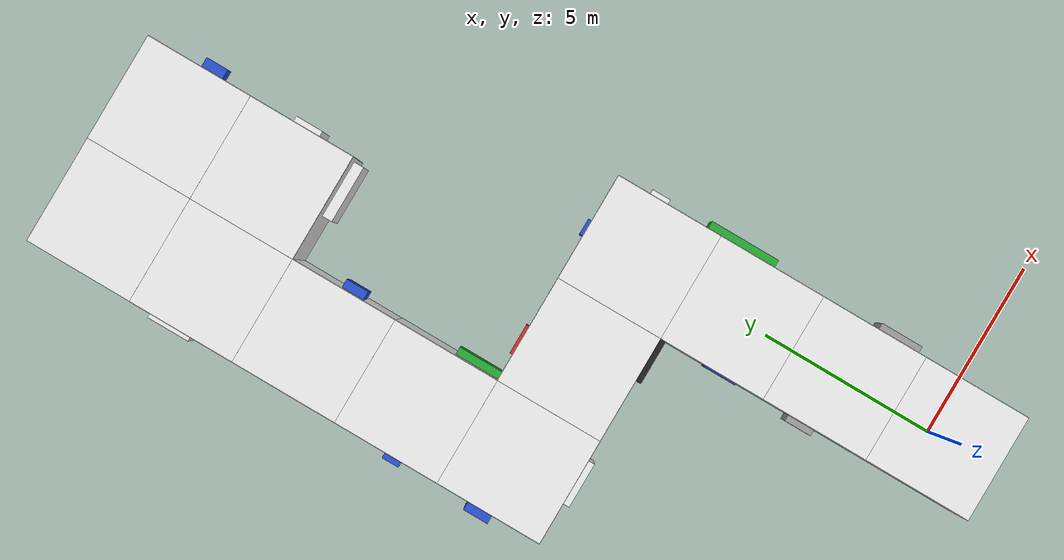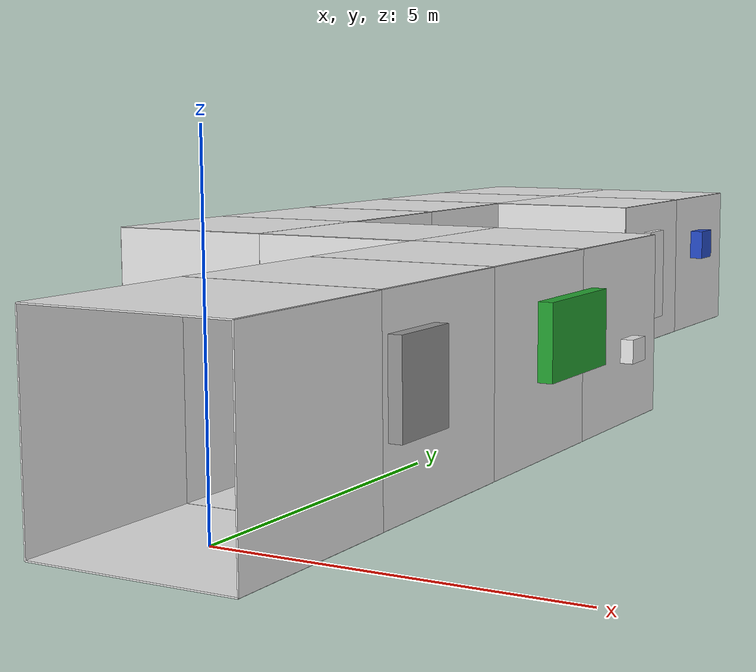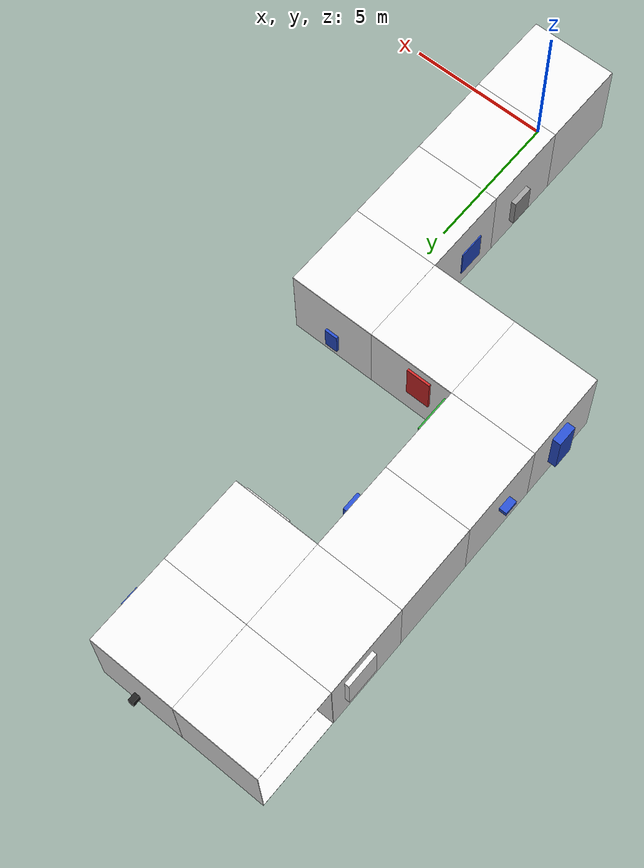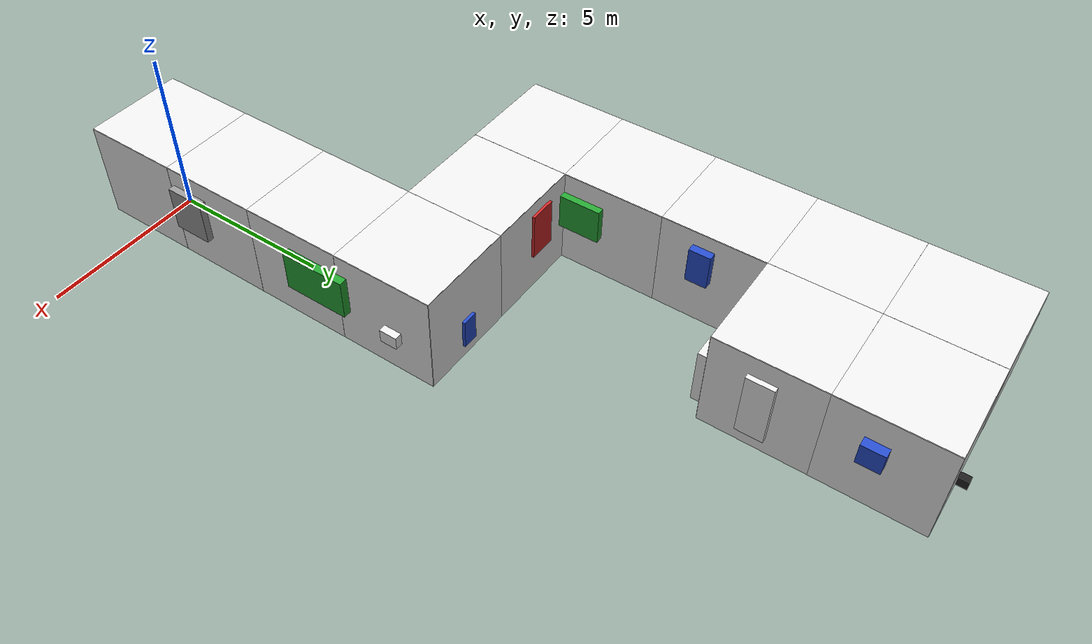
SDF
<?xml version='1.0' encoding='us-ascii'?>
<sdf version="1.6">
  <model name="corridor_white">
       <model name="wall_right_0_0_0_0">
      <static>1</static>
      <pose>1.5 0.0 1.5 0.0 0.0 1.57</pose>
      <link name="link">
        <collision name="collision">
          <geometry>
            <box>
              <size>3 0.02 3</size>
            </box>
          </geometry>
        </collision>
        <visual name="visual">
          <material>
            <script>
              <name>Gazebo/White</name>
              <uri>file://media/materials/scripts/gazebo.material</uri>
            </script>
          </material>
          <geometry>
            <box>
              <size>3 0.02 3</size>
            </box>
          </geometry>
        </visual>
      </link>
    </model>
    <model name="wall_left_0_0_0_0">
      <static>1</static>
      <pose>-1.5 0.0 1.5 0.0 0.0 1.57</pose>
      <link name="link">
        <collision name="collision">
          <geometry>
            <box>
              <size>3 0.02 3</size>
            </box>
          </geometry>
        </collision>
        <visual name="visual">
          <material>
            <script>
              <name>Gazebo/White</name>
              <uri>file://media/materials/scripts/gazebo.material</uri>
            </script>
          </material>
          <geometry>
            <box>
              <size>3 0.02 3</size>
            </box>
          </geometry>
        </visual>
      </link>
    </model>
    <model name="wall_top_0_0_0_0">
      <static>1</static>
      <pose>0.0 0.0 3.0 1.57 0.0 0.0</pose>
      <link name="link">
        <collision name="collision">
          <geometry>
            <box>
              <size>3 0.02 3</size>
            </box>
          </geometry>
        </collision>
        <visual name="visual">
          <material>
            <script>
              <name>Gazebo/White</name>
              <uri>file://media/materials/scripts/gazebo.material</uri>
            </script>
          </material>
          <geometry>
            <box>
              <size>3 0.02 3</size>
            </box>
          </geometry>
        </visual>
      </link>
    </model>
    <model name="wall_bottom_0_0_0_0">
      <static>1</static>
      <pose>0.0 0.0 0.0 1.57 0.0 0.0</pose>
      <link name="link">
        <collision name="collision">
          <geometry>
            <box>
              <size>3 0.02 3</size>
            </box>
          </geometry>
        </collision>
        <visual name="visual">
          <material>
            <script>
              <name>Gazebo/White</name>
              <uri>file://media/materials/scripts/gazebo.material</uri>
            </script>
          </material>
          <geometry>
            <box>
              <size>3 0.02 3</size>
            </box>
          </geometry>
        </visual>
      </link>
    </model>
    <model name="wall_right_0_1_0_1">
      <static>1</static>
      <pose>1.5 3.0 1.5 0.0 0.0 1.57</pose>
      <link name="link">
        <collision name="collision">
          <geometry>
            <box>
              <size>3 0.02 3</size>
            </box>
          </geometry>
        </collision>
        <visual name="visual">
          <material>
            <script>
              <name>Gazebo/White</name>
              <uri>file://media/materials/scripts/gazebo.material</uri>
            </script>
          </material>
          <geometry>
            <box>
              <size>3 0.02 3</size>
            </box>
          </geometry>
        </visual>
      </link>
    </model>
    <model name="wall_left_0_1_0_1">
      <static>1</static>
      <pose>-1.5 3.0 1.5 0.0 0.0 1.57</pose>
      <link name="link">
        <collision name="collision">
          <geometry>
            <box>
              <size>3 0.02 3</size>
            </box>
          </geometry>
        </collision>
        <visual name="visual">
          <material>
            <script>
              <name>Gazebo/White</name>
              <uri>file://media/materials/scripts/gazebo.material</uri>
            </script>
          </material>
          <geometry>
            <box>
              <size>3 0.02 3</size>
            </box>
          </geometry>
        </visual>
      </link>
    </model>
    <model name="wall_top_0_1_0_1">
      <static>1</static>
      <pose>0.0 3.0 3.0 1.57 0.0 0.0</pose>
      <link name="link">
        <collision name="collision">
          <geometry>
            <box>
              <size>3 0.02 3</size>
            </box>
          </geometry>
        </collision>
        <visual name="visual">
          <material>
            <script>
              <name>Gazebo/White</name>
              <uri>file://media/materials/scripts/gazebo.material</uri>
            </script>
          </material>
          <geometry>
            <box>
              <size>3 0.02 3</size>
            </box>
          </geometry>
        </visual>
      </link>
    </model>
    <model name="wall_bottom_0_1_0_1">
      <static>1</static>
      <pose>0.0 3.0 0.0 1.57 0.0 0.0</pose>
      <link name="link">
        <collision name="collision">
          <geometry>
            <box>
              <size>3 0.02 3</size>
            </box>
          </geometry>
        </collision>
        <visual name="visual">
          <material>
            <script>
              <name>Gazebo/White</name>
              <uri>file://media/materials/scripts/gazebo.material</uri>
            </script>
          </material>
          <geometry>
            <box>
              <size>3 0.02 3</size>
            </box>
          </geometry>
        </visual>
      </link>
    </model>
    <model name="panel_0_1_0_1">
      <static>1</static>
      <pose>1.5 2.2241455779976746 1.76880062534 0.0 0.0 0.0</pose>
      <link name="link">
        <collision name="collision">
          <geometry>
            <box>
              <size>0.423083053717 1.17973638202 1.35894419831</size>
            </box>
          </geometry>
        </collision>
        <visual name="visual">
          <material>
            <script>
              <name>Gazebo/Grey</name>
              <uri>file://media/materials/scripts/gazebo.material</uri>
            </script>
          </material>
          <geometry>
            <box>
              <size>0.423083053717 1.17973638202 1.35894419831</size>
            </box>
          </geometry>
        </visual>
      </link>
    </model>
    <model name="panel_0_1_1_1">
      <static>1</static>
      <pose>-1.5 3.2159290072298226 1.14978853377 0.0 0.0 0.0</pose>
      <link name="link">
        <collision name="collision">
          <geometry>
            <box>
              <size>0.368283796153 0.767584961987 1.09945229276</size>
            </box>
          </geometry>
        </collision>
        <visual name="visual">
          <material>
            <script>
              <name>Gazebo/Grey</name>
              <uri>file://media/materials/scripts/gazebo.material</uri>
            </script>
          </material>
          <geometry>
            <box>
              <size>0.368283796153 0.767584961987 1.09945229276</size>
            </box>
          </geometry>
        </visual>
      </link>
    </model>
    <model name="wall_right_0_2_0_1">
      <static>1</static>
      <pose>1.5 6.0 1.5 0.0 0.0 1.57</pose>
      <link name="link">
        <collision name="collision">
          <geometry>
            <box>
              <size>3 0.02 3</size>
            </box>
          </geometry>
        </collision>
        <visual name="visual">
          <material>
            <script>
              <name>Gazebo/White</name>
              <uri>file://media/materials/scripts/gazebo.material</uri>
            </script>
          </material>
          <geometry>
            <box>
              <size>3 0.02 3</size>
            </box>
          </geometry>
        </visual>
      </link>
    </model>
    <model name="wall_left_0_2_0_1">
      <static>1</static>
      <pose>-1.5 6.0 1.5 0.0 0.0 1.57</pose>
      <link name="link">
        <collision name="collision">
          <geometry>
            <box>
              <size>3 0.02 3</size>
            </box>
          </geometry>
        </collision>
        <visual name="visual">
          <material>
            <script>
              <name>Gazebo/White</name>
              <uri>file://media/materials/scripts/gazebo.material</uri>
            </script>
          </material>
          <geometry>
            <box>
              <size>3 0.02 3</size>
            </box>
          </geometry>
        </visual>
      </link>
    </model>
    <model name="wall_top_0_2_0_1">
      <static>1</static>
      <pose>0.0 6.0 3.0 1.57 0.0 0.0</pose>
      <link name="link">
        <collision name="collision">
          <geometry>
            <box>
              <size>3 0.02 3</size>
            </box>
          </geometry>
        </collision>
        <visual name="visual">
          <material>
            <script>
              <name>Gazebo/White</name>
              <uri>file://media/materials/scripts/gazebo.material</uri>
            </script>
          </material>
          <geometry>
            <box>
              <size>3 0.02 3</size>
            </box>
          </geometry>
        </visual>
      </link>
    </model>
    <model name="wall_bottom_0_2_0_1">
      <static>1</static>
      <pose>0.0 6.0 0.0 1.57 0.0 0.0</pose>
      <link name="link">
        <collision name="collision">
          <geometry>
            <box>
              <size>3 0.02 3</size>
            </box>
          </geometry>
        </collision>
        <visual name="visual">
          <material>
            <script>
              <name>Gazebo/White</name>
              <uri>file://media/materials/scripts/gazebo.material</uri>
            </script>
          </material>
          <geometry>
            <box>
              <size>3 0.02 3</size>
            </box>
          </geometry>
        </visual>
      </link>
    </model>
    <model name="panel_0_2_0_1">
      <static>1</static>
      <pose>1.5 6.87152692760868 1.7749708912 0.0 0.0 0.0</pose>
      <link name="link">
        <collision name="collision">
          <geometry>
            <box>
              <size>0.497894865199 1.96393577452 1.19345969073</size>
            </box>
          </geometry>
        </collision>
        <visual name="visual">
          <material>
            <script>
              <name>Gazebo/Green</name>
              <uri>file://media/materials/scripts/gazebo.material</uri>
            </script>
          </material>
          <geometry>
            <box>
              <size>0.497894865199 1.96393577452 1.19345969073</size>
            </box>
          </geometry>
        </visual>
      </link>
    </model>
    <model name="panel_0_2_1_1">
      <static>1</static>
      <pose>-1.5 5.635860961192801 1.17555072138 0.0 0.0 0.0</pose>
      <link name="link">
        <collision name="collision">
          <geometry>
            <box>
              <size>0.0907272428348 0.924566676894 1.11926749878</size>
            </box>
          </geometry>
        </collision>
        <visual name="visual">
          <material>
            <script>
              <name>Gazebo/Blue</name>
              <uri>file://media/materials/scripts/gazebo.material</uri>
            </script>
          </material>
          <geometry>
            <box>
              <size>0.0907272428348 0.924566676894 1.11926749878</size>
            </box>
          </geometry>
        </visual>
      </link>
    </model>
    <model name="wall_front_0_3_0_3">
      <static>1</static>
      <pose>0.0 10.5 1.5 0.0 0.0 0.0</pose>
      <link name="link">
        <collision name="collision">
          <geometry>
            <box>
              <size>3 0.02 3</size>
            </box>
          </geometry>
        </collision>
        <visual name="visual">
          <material>
            <script>
              <name>Gazebo/White</name>
              <uri>file://media/materials/scripts/gazebo.material</uri>
            </script>
          </material>
          <geometry>
            <box>
              <size>3 0.02 3</size>
            </box>
          </geometry>
        </visual>
      </link>
    </model>
    <model name="wall_right_0_3_0_3">
      <static>1</static>
      <pose>1.5 9.0 1.5 0.0 0.0 1.57</pose>
      <link name="link">
        <collision name="collision">
          <geometry>
            <box>
              <size>3 0.02 3</size>
            </box>
          </geometry>
        </collision>
        <visual name="visual">
          <material>
            <script>
              <name>Gazebo/White</name>
              <uri>file://media/materials/scripts/gazebo.material</uri>
            </script>
          </material>
          <geometry>
            <box>
              <size>3 0.02 3</size>
            </box>
          </geometry>
        </visual>
      </link>
    </model>
    <model name="wall_top_0_3_0_3">
      <static>1</static>
      <pose>0.0 9.0 3.0 1.57 0.0 0.0</pose>
      <link name="link">
        <collision name="collision">
          <geometry>
            <box>
              <size>3 0.02 3</size>
            </box>
          </geometry>
        </collision>
        <visual name="visual">
          <material>
            <script>
              <name>Gazebo/White</name>
              <uri>file://media/materials/scripts/gazebo.material</uri>
            </script>
          </material>
          <geometry>
            <box>
              <size>3 0.02 3</size>
            </box>
          </geometry>
        </visual>
      </link>
    </model>
    <model name="wall_bottom_0_3_0_3">
      <static>1</static>
      <pose>0.0 9.0 0.0 1.57 0.0 0.0</pose>
      <link name="link">
        <collision name="collision">
          <geometry>
            <box>
              <size>3 0.02 3</size>
            </box>
          </geometry>
        </collision>
        <visual name="visual">
          <material>
            <script>
              <name>Gazebo/White</name>
              <uri>file://media/materials/scripts/gazebo.material</uri>
            </script>
          </material>
          <geometry>
            <box>
              <size>3 0.02 3</size>
            </box>
          </geometry>
        </visual>
      </link>
    </model>
    <model name="panel_0_3_0_3">
      <static>1</static>
      <pose>1.5 9.286936696781568 1.2100380568 0.0 0.0 0.0</pose>
      <link name="link">
        <collision name="collision">
          <geometry>
            <box>
              <size>0.456125890025 0.525917677065 0.392894214881</size>
            </box>
          </geometry>
        </collision>
        <visual name="visual">
          <material>
            <script>
              <name>Gazebo/White</name>
              <uri>file://media/materials/scripts/gazebo.material</uri>
            </script>
          </material>
          <geometry>
            <box>
              <size>0.456125890025 0.525917677065 0.392894214881</size>
            </box>
          </geometry>
        </visual>
      </link>
    </model>
    <model name="panel_0_3_1_3">
      <static>1</static>
      <pose>0.004071926796724024 10.5 0.861667997028 0.0 0.0 1.57</pose>
      <link name="link">
        <collision name="collision">
          <geometry>
            <box>
              <size>0.204371754929 0.459037315279 0.886738190696</size>
            </box>
          </geometry>
        </collision>
        <visual name="visual">
          <material>
            <script>
              <name>Gazebo/Blue</name>
              <uri>file://media/materials/scripts/gazebo.material</uri>
            </script>
          </material>
          <geometry>
            <box>
              <size>0.204371754929 0.459037315279 0.886738190696</size>
            </box>
          </geometry>
        </visual>
      </link>
    </model>
    <model name="wall_right_-1_3_0_1">
      <static>1</static>
      <pose>-3.0 10.5 1.5 0.0 0.0 3.14</pose>
      <link name="link">
        <collision name="collision">
          <geometry>
            <box>
              <size>3 0.02 3</size>
            </box>
          </geometry>
        </collision>
        <visual name="visual">
          <material>
            <script>
              <name>Gazebo/White</name>
              <uri>file://media/materials/scripts/gazebo.material</uri>
            </script>
          </material>
          <geometry>
            <box>
              <size>3 0.02 3</size>
            </box>
          </geometry>
        </visual>
      </link>
    </model>
    <model name="wall_left_-1_3_0_1">
      <static>1</static>
      <pose>-3.0 7.5 1.5 0.0 0.0 3.14</pose>
      <link name="link">
        <collision name="collision">
          <geometry>
            <box>
              <size>3 0.02 3</size>
            </box>
          </geometry>
        </collision>
        <visual name="visual">
          <material>
            <script>
              <name>Gazebo/White</name>
              <uri>file://media/materials/scripts/gazebo.material</uri>
            </script>
          </material>
          <geometry>
            <box>
              <size>3 0.02 3</size>
            </box>
          </geometry>
        </visual>
      </link>
    </model>
    <model name="wall_top_-1_3_0_1">
      <static>1</static>
      <pose>-3.0 9.0 3.0 1.57 0.0 1.57</pose>
      <link name="link">
        <collision name="collision">
          <geometry>
            <box>
              <size>3 0.02 3</size>
            </box>
          </geometry>
        </collision>
        <visual name="visual">
          <material>
            <script>
              <name>Gazebo/White</name>
              <uri>file://media/materials/scripts/gazebo.material</uri>
            </script>
          </material>
          <geometry>
            <box>
              <size>3 0.02 3</size>
            </box>
          </geometry>
        </visual>
      </link>
    </model>
    <model name="wall_bottom_-1_3_0_1">
      <static>1</static>
      <pose>-3.0 9.0 0.0 1.57 0.0 1.57</pose>
      <link name="link">
        <collision name="collision">
          <geometry>
            <box>
              <size>3 0.02 3</size>
            </box>
          </geometry>
        </collision>
        <visual name="visual">
          <material>
            <script>
              <name>Gazebo/White</name>
              <uri>file://media/materials/scripts/gazebo.material</uri>
            </script>
          </material>
          <geometry>
            <box>
              <size>3 0.02 3</size>
            </box>
          </geometry>
        </visual>
      </link>
    </model>
    <model name="panel_-1_3_0_1">
      <static>1</static>
      <pose>-3.3420306696428597 10.5 1.88658982361 0.0 0.0 1.57</pose>
      <link name="link">
        <collision name="collision">
          <geometry>
            <box>
              <size>0.178328974733 0.828825840254 1.44131656192</size>
            </box>
          </geometry>
        </collision>
        <visual name="visual">
          <material>
            <script>
              <name>Gazebo/Red</name>
              <uri>file://media/materials/scripts/gazebo.material</uri>
            </script>
          </material>
          <geometry>
            <box>
              <size>0.178328974733 0.828825840254 1.44131656192</size>
            </box>
          </geometry>
        </visual>
      </link>
    </model>
    <model name="panel_-1_3_1_1">
      <static>1</static>
      <pose>-1.8046588702643742 7.5 1.92212192568 0.0 0.0 1.57</pose>
      <link name="link">
        <collision name="collision">
          <geometry>
            <box>
              <size>0.357357351946 1.873804943 1.27352757631</size>
            </box>
          </geometry>
        </collision>
        <visual name="visual">
          <material>
            <script>
              <name>Gazebo/Black</name>
              <uri>file://media/materials/scripts/gazebo.material</uri>
            </script>
          </material>
          <geometry>
            <box>
              <size>0.357357351946 1.873804943 1.27352757631</size>
            </box>
          </geometry>
        </visual>
      </link>
    </model>
    <model name="wall_front_-2_3_0_2">
      <static>1</static>
      <pose>-7.5 9.0 1.5 0.0 0.0 1.57</pose>
      <link name="link">
        <collision name="collision">
          <geometry>
            <box>
              <size>3 0.02 3</size>
            </box>
          </geometry>
        </collision>
        <visual name="visual">
          <material>
            <script>
              <name>Gazebo/White</name>
              <uri>file://media/materials/scripts/gazebo.material</uri>
            </script>
          </material>
          <geometry>
            <box>
              <size>3 0.02 3</size>
            </box>
          </geometry>
        </visual>
      </link>
    </model>
    <model name="wall_left_-2_3_0_2">
      <static>1</static>
      <pose>-6.0 7.5 1.5 0.0 0.0 3.14</pose>
      <link name="link">
        <collision name="collision">
          <geometry>
            <box>
              <size>3 0.02 3</size>
            </box>
          </geometry>
        </collision>
        <visual name="visual">
          <material>
            <script>
              <name>Gazebo/White</name>
              <uri>file://media/materials/scripts/gazebo.material</uri>
            </script>
          </material>
          <geometry>
            <box>
              <size>3 0.02 3</size>
            </box>
          </geometry>
        </visual>
      </link>
    </model>
    <model name="wall_top_-2_3_0_2">
      <static>1</static>
      <pose>-6.0 9.0 3.0 1.57 0.0 1.57</pose>
      <link name="link">
        <collision name="collision">
          <geometry>
            <box>
              <size>3 0.02 3</size>
            </box>
          </geometry>
        </collision>
        <visual name="visual">
          <material>
            <script>
              <name>Gazebo/White</name>
              <uri>file://media/materials/scripts/gazebo.material</uri>
            </script>
          </material>
          <geometry>
            <box>
              <size>3 0.02 3</size>
            </box>
          </geometry>
        </visual>
      </link>
    </model>
    <model name="wall_bottom_-2_3_0_2">
      <static>1</static>
      <pose>-6.0 9.0 0.0 1.57 0.0 1.57</pose>
      <link name="link">
        <collision name="collision">
          <geometry>
            <box>
              <size>3 0.02 3</size>
            </box>
          </geometry>
        </collision>
        <visual name="visual">
          <material>
            <script>
              <name>Gazebo/White</name>
              <uri>file://media/materials/scripts/gazebo.material</uri>
            </script>
          </material>
          <geometry>
            <box>
              <size>3 0.02 3</size>
            </box>
          </geometry>
        </visual>
      </link>
    </model>
    <model name="panel_-2_3_0_2">
      <static>1</static>
      <pose>-7.5 9.219944884344075 1.59290185562 0.0 0.0 3.14</pose>
      <link name="link">
        <collision name="collision">
          <geometry>
            <box>
              <size>0.592466907683 0.712480567115 1.60356392178</size>
            </box>
          </geometry>
        </collision>
        <visual name="visual">
          <material>
            <script>
              <name>Gazebo/Blue</name>
              <uri>file://media/materials/scripts/gazebo.material</uri>
            </script>
          </material>
          <geometry>
            <box>
              <size>0.592466907683 0.712480567115 1.60356392178</size>
            </box>
          </geometry>
        </visual>
      </link>
    </model>
    <model name="panel_-2_3_1_2">
      <static>1</static>
      <pose>-5.773238193758122 7.5 1.18134228043 0.0 0.0 1.57</pose>
      <link name="link">
        <collision name="collision">
          <geometry>
            <box>
              <size>0.480666316103 1.28267439254 1.40654631702</size>
            </box>
          </geometry>
        </collision>
        <visual name="visual">
          <material>
            <script>
              <name>Gazebo/White</name>
              <uri>file://media/materials/scripts/gazebo.material</uri>
            </script>
          </material>
          <geometry>
            <box>
              <size>0.480666316103 1.28267439254 1.40654631702</size>
            </box>
          </geometry>
        </visual>
      </link>
    </model>
    <model name="wall_right_-2_4_0_1">
      <static>1</static>
      <pose>-4.5 12.0 1.5 0.0 0.0 1.57</pose>
      <link name="link">
        <collision name="collision">
          <geometry>
            <box>
              <size>3 0.02 3</size>
            </box>
          </geometry>
        </collision>
        <visual name="visual">
          <material>
            <script>
              <name>Gazebo/White</name>
              <uri>file://media/materials/scripts/gazebo.material</uri>
            </script>
          </material>
          <geometry>
            <box>
              <size>3 0.02 3</size>
            </box>
          </geometry>
        </visual>
      </link>
    </model>
    <model name="wall_left_-2_4_0_1">
      <static>1</static>
      <pose>-7.5 12.0 1.5 0.0 0.0 1.57</pose>
      <link name="link">
        <collision name="collision">
          <geometry>
            <box>
              <size>3 0.02 3</size>
            </box>
          </geometry>
        </collision>
        <visual name="visual">
          <material>
            <script>
              <name>Gazebo/White</name>
              <uri>file://media/materials/scripts/gazebo.material</uri>
            </script>
          </material>
          <geometry>
            <box>
              <size>3 0.02 3</size>
            </box>
          </geometry>
        </visual>
      </link>
    </model>
    <model name="wall_top_-2_4_0_1">
      <static>1</static>
      <pose>-6.0 12.0 3.0 1.57 0.0 0.0</pose>
      <link name="link">
        <collision name="collision">
          <geometry>
            <box>
              <size>3 0.02 3</size>
            </box>
          </geometry>
        </collision>
        <visual name="visual">
          <material>
            <script>
              <name>Gazebo/White</name>
              <uri>file://media/materials/scripts/gazebo.material</uri>
            </script>
          </material>
          <geometry>
            <box>
              <size>3 0.02 3</size>
            </box>
          </geometry>
        </visual>
      </link>
    </model>
    <model name="wall_bottom_-2_4_0_1">
      <static>1</static>
      <pose>-6.0 12.0 0.0 1.57 0.0 0.0</pose>
      <link name="link">
        <collision name="collision">
          <geometry>
            <box>
              <size>3 0.02 3</size>
            </box>
          </geometry>
        </collision>
        <visual name="visual">
          <material>
            <script>
              <name>Gazebo/White</name>
              <uri>file://media/materials/scripts/gazebo.material</uri>
            </script>
          </material>
          <geometry>
            <box>
              <size>3 0.02 3</size>
            </box>
          </geometry>
        </visual>
      </link>
    </model>
    <model name="panel_-2_4_0_1">
      <static>1</static>
      <pose>-4.5 10.954909121704679 1.85162423829 0.0 0.0 0.0</pose>
      <link name="link">
        <collision name="collision">
          <geometry>
            <box>
              <size>0.446083324655 1.60101667372 1.06303925732</size>
            </box>
          </geometry>
        </collision>
        <visual name="visual">
          <material>
            <script>
              <name>Gazebo/Green</name>
              <uri>file://media/materials/scripts/gazebo.material</uri>
            </script>
          </material>
          <geometry>
            <box>
              <size>0.446083324655 1.60101667372 1.06303925732</size>
            </box>
          </geometry>
        </visual>
      </link>
    </model>
    <model name="panel_-2_4_1_1">
      <static>1</static>
      <pose>-7.5 11.799646327172775 1.74514268028 0.0 0.0 0.0</pose>
      <link name="link">
        <collision name="collision">
          <geometry>
            <box>
              <size>0.541125785587 0.490364281368 0.16844632354</size>
            </box>
          </geometry>
        </collision>
        <visual name="visual">
          <material>
            <script>
              <name>Gazebo/Blue</name>
              <uri>file://media/materials/scripts/gazebo.material</uri>
            </script>
          </material>
          <geometry>
            <box>
              <size>0.541125785587 0.490364281368 0.16844632354</size>
            </box>
          </geometry>
        </visual>
      </link>
    </model>
    <model name="wall_right_-2_5_0_1">
      <static>1</static>
      <pose>-4.5 15.0 1.5 0.0 0.0 1.57</pose>
      <link name="link">
        <collision name="collision">
          <geometry>
            <box>
              <size>3 0.02 3</size>
            </box>
          </geometry>
        </collision>
        <visual name="visual">
          <material>
            <script>
              <name>Gazebo/White</name>
              <uri>file://media/materials/scripts/gazebo.material</uri>
            </script>
          </material>
          <geometry>
            <box>
              <size>3 0.02 3</size>
            </box>
          </geometry>
        </visual>
      </link>
    </model>
    <model name="wall_left_-2_5_0_1">
      <static>1</static>
      <pose>-7.5 15.0 1.5 0.0 0.0 1.57</pose>
      <link name="link">
        <collision name="collision">
          <geometry>
            <box>
              <size>3 0.02 3</size>
            </box>
          </geometry>
        </collision>
        <visual name="visual">
          <material>
            <script>
              <name>Gazebo/White</name>
              <uri>file://media/materials/scripts/gazebo.material</uri>
            </script>
          </material>
          <geometry>
            <box>
              <size>3 0.02 3</size>
            </box>
          </geometry>
        </visual>
      </link>
    </model>
    <model name="wall_top_-2_5_0_1">
      <static>1</static>
      <pose>-6.0 15.0 3.0 1.57 0.0 0.0</pose>
      <link name="link">
        <collision name="collision">
          <geometry>
            <box>
              <size>3 0.02 3</size>
            </box>
          </geometry>
        </collision>
        <visual name="visual">
          <material>
            <script>
              <name>Gazebo/White</name>
              <uri>file://media/materials/scripts/gazebo.material</uri>
            </script>
          </material>
          <geometry>
            <box>
              <size>3 0.02 3</size>
            </box>
          </geometry>
        </visual>
      </link>
    </model>
    <model name="wall_bottom_-2_5_0_1">
      <static>1</static>
      <pose>-6.0 15.0 0.0 1.57 0.0 0.0</pose>
      <link name="link">
        <collision name="collision">
          <geometry>
            <box>
              <size>3 0.02 3</size>
            </box>
          </geometry>
        </collision>
        <visual name="visual">
          <material>
            <script>
              <name>Gazebo/White</name>
              <uri>file://media/materials/scripts/gazebo.material</uri>
            </script>
          </material>
          <geometry>
            <box>
              <size>3 0.02 3</size>
            </box>
          </geometry>
        </visual>
      </link>
    </model>
    <model name="panel_-2_5_0_1">
      <static>1</static>
      <pose>-4.5 14.785468647498032 2.02972872441 0.0 0.0 0.0</pose>
      <link name="link">
        <collision name="collision">
          <geometry>
            <box>
              <size>0.50089424893 0.631137190277 1.05820782269</size>
            </box>
          </geometry>
        </collision>
        <visual name="visual">
          <material>
            <script>
              <name>Gazebo/Blue</name>
              <uri>file://media/materials/scripts/gazebo.material</uri>
            </script>
          </material>
          <geometry>
            <box>
              <size>0.50089424893 0.631137190277 1.05820782269</size>
            </box>
          </geometry>
        </visual>
      </link>
    </model>
    <model name="panel_-2_5_1_1">
      <static>1</static>
      <pose>-7.5 14.717621893927802 0.867342871237 0.0 0.0 0.0</pose>
      <link name="link">
        <collision name="collision">
          <geometry>
            <box>
              <size>0.0025015070707 0.578751466401 0.66955687936</size>
            </box>
          </geometry>
        </collision>
        <visual name="visual">
          <material>
            <script>
              <name>Gazebo/Black</name>
              <uri>file://media/materials/scripts/gazebo.material</uri>
            </script>
          </material>
          <geometry>
            <box>
              <size>0.0025015070707 0.578751466401 0.66955687936</size>
            </box>
          </geometry>
        </visual>
      </link>
    </model>
    <model name="wall_front_-2_6_0_2">
      <static>1</static>
      <pose>-6.0 19.5 1.5 0.0 0.0 0.0</pose>
      <link name="link">
        <collision name="collision">
          <geometry>
            <box>
              <size>3 0.02 3</size>
            </box>
          </geometry>
        </collision>
        <visual name="visual">
          <material>
            <script>
              <name>Gazebo/White</name>
              <uri>file://media/materials/scripts/gazebo.material</uri>
            </script>
          </material>
          <geometry>
            <box>
              <size>3 0.02 3</size>
            </box>
          </geometry>
        </visual>
      </link>
    </model>
    <model name="wall_left_-2_6_0_2">
      <static>1</static>
      <pose>-7.5 18.0 1.5 0.0 0.0 1.57</pose>
      <link name="link">
        <collision name="collision">
          <geometry>
            <box>
              <size>3 0.02 3</size>
            </box>
          </geometry>
        </collision>
        <visual name="visual">
          <material>
            <script>
              <name>Gazebo/White</name>
              <uri>file://media/materials/scripts/gazebo.material</uri>
            </script>
          </material>
          <geometry>
            <box>
              <size>3 0.02 3</size>
            </box>
          </geometry>
        </visual>
      </link>
    </model>
    <model name="wall_top_-2_6_0_2">
      <static>1</static>
      <pose>-6.0 18.0 3.0 1.57 0.0 0.0</pose>
      <link name="link">
        <collision name="collision">
          <geometry>
            <box>
              <size>3 0.02 3</size>
            </box>
          </geometry>
        </collision>
        <visual name="visual">
          <material>
            <script>
              <name>Gazebo/White</name>
              <uri>file://media/materials/scripts/gazebo.material</uri>
            </script>
          </material>
          <geometry>
            <box>
              <size>3 0.02 3</size>
            </box>
          </geometry>
        </visual>
      </link>
    </model>
    <model name="wall_bottom_-2_6_0_2">
      <static>1</static>
      <pose>-6.0 18.0 0.0 1.57 0.0 0.0</pose>
      <link name="link">
        <collision name="collision">
          <geometry>
            <box>
              <size>3 0.02 3</size>
            </box>
          </geometry>
        </collision>
        <visual name="visual">
          <material>
            <script>
              <name>Gazebo/White</name>
              <uri>file://media/materials/scripts/gazebo.material</uri>
            </script>
          </material>
          <geometry>
            <box>
              <size>3 0.02 3</size>
            </box>
          </geometry>
        </visual>
      </link>
    </model>
    <model name="panel_-2_6_0_2">
      <static>1</static>
      <pose>-6.106518556263012 19.5 0.664431220829 0.0 0.0 1.57</pose>
      <link name="link">
        <collision name="collision">
          <geometry>
            <box>
              <size>0.586059304488 0.300396144362 0.272568818452</size>
            </box>
          </geometry>
        </collision>
        <visual name="visual">
          <material>
            <script>
              <name>Gazebo/Grey</name>
              <uri>file://media/materials/scripts/gazebo.material</uri>
            </script>
          </material>
          <geometry>
            <box>
              <size>0.586059304488 0.300396144362 0.272568818452</size>
            </box>
          </geometry>
        </visual>
      </link>
    </model>
    <model name="panel_-2_6_1_2">
      <static>1</static>
      <pose>-7.5 18.373155969662182 1.74937295016 0.0 0.0 0.0</pose>
      <link name="link">
        <collision name="collision">
          <geometry>
            <box>
              <size>0.330460974584 1.18967187978 1.49889684286</size>
            </box>
          </geometry>
        </collision>
        <visual name="visual">
          <material>
            <script>
              <name>Gazebo/White</name>
              <uri>file://media/materials/scripts/gazebo.material</uri>
            </script>
          </material>
          <geometry>
            <box>
              <size>0.330460974584 1.18967187978 1.49889684286</size>
            </box>
          </geometry>
        </visual>
      </link>
    </model>
    <model name="wall_front_-1_6_0_3">
      <static>1</static>
      <pose>-1.5 18.0 1.5 0.0 0.0 -1.57</pose>
      <link name="link">
        <collision name="collision">
          <geometry>
            <box>
              <size>3 0.02 3</size>
            </box>
          </geometry>
        </collision>
        <visual name="visual">
          <material>
            <script>
              <name>Gazebo/White</name>
              <uri>file://media/materials/scripts/gazebo.material</uri>
            </script>
          </material>
          <geometry>
            <box>
              <size>3 0.02 3</size>
            </box>
          </geometry>
        </visual>
      </link>
    </model>
    <model name="wall_right_-1_6_0_3">
      <static>1</static>
      <pose>-3.0 16.5 1.5 0.0 0.0 0.0</pose>
      <link name="link">
        <collision name="collision">
          <geometry>
            <box>
              <size>3 0.02 3</size>
            </box>
          </geometry>
        </collision>
        <visual name="visual">
          <material>
            <script>
              <name>Gazebo/White</name>
              <uri>file://media/materials/scripts/gazebo.material</uri>
            </script>
          </material>
          <geometry>
            <box>
              <size>3 0.02 3</size>
            </box>
          </geometry>
        </visual>
      </link>
    </model>
    <model name="wall_top_-1_6_0_3">
      <static>1</static>
      <pose>-3.0 18.0 3.0 1.57 0.0 -1.57</pose>
      <link name="link">
        <collision name="collision">
          <geometry>
            <box>
              <size>3 0.02 3</size>
            </box>
          </geometry>
        </collision>
        <visual name="visual">
          <material>
            <script>
              <name>Gazebo/White</name>
              <uri>file://media/materials/scripts/gazebo.material</uri>
            </script>
          </material>
          <geometry>
            <box>
              <size>3 0.02 3</size>
            </box>
          </geometry>
        </visual>
      </link>
    </model>
    <model name="wall_bottom_-1_6_0_3">
      <static>1</static>
      <pose>-3.0 18.0 0.0 1.57 0.0 -1.57</pose>
      <link name="link">
        <collision name="collision">
          <geometry>
            <box>
              <size>3 0.02 3</size>
            </box>
          </geometry>
        </collision>
        <visual name="visual">
          <material>
            <script>
              <name>Gazebo/White</name>
              <uri>file://media/materials/scripts/gazebo.material</uri>
            </script>
          </material>
          <geometry>
            <box>
              <size>3 0.02 3</size>
            </box>
          </geometry>
        </visual>
      </link>
    </model>
    <model name="panel_-1_6_0_3">
      <static>1</static>
      <pose>-1.5 17.938083353278678 1.46147495041 0.0 0.0 0.0</pose>
      <link name="link">
        <collision name="collision">
          <geometry>
            <box>
              <size>0.324135090503 0.766852429641 1.90256870594</size>
            </box>
          </geometry>
        </collision>
        <visual name="visual">
          <material>
            <script>
              <name>Gazebo/White</name>
              <uri>file://media/materials/scripts/gazebo.material</uri>
            </script>
          </material>
          <geometry>
            <box>
              <size>0.324135090503 0.766852429641 1.90256870594</size>
            </box>
          </geometry>
        </visual>
      </link>
    </model>
    <model name="panel_-1_6_1_3">
      <static>1</static>
      <pose>-2.3997878152004324 16.5 1.31776728916 0.0 0.0 -1.57</pose>
      <link name="link">
        <collision name="collision">
          <geometry>
            <box>
              <size>0.573199535957 1.60618491777 1.65815625324</size>
            </box>
          </geometry>
        </collision>
        <visual name="visual">
          <material>
            <script>
              <name>Gazebo/White</name>
              <uri>file://media/materials/scripts/gazebo.material</uri>
            </script>
          </material>
          <geometry>
            <box>
              <size>0.573199535957 1.60618491777 1.65815625324</size>
            </box>
          </geometry>
        </visual>
      </link>
    </model>
    <model name="wall_front_-1_7_0_3">
      <static>1</static>
      <pose>-3.0 22.5 1.5 0.0 0.0 0.0</pose>
      <link name="link">
        <collision name="collision">
          <geometry>
            <box>
              <size>3 0.02 3</size>
            </box>
          </geometry>
        </collision>
        <visual name="visual">
          <material>
            <script>
              <name>Gazebo/White</name>
              <uri>file://media/materials/scripts/gazebo.material</uri>
            </script>
          </material>
          <geometry>
            <box>
              <size>3 0.02 3</size>
            </box>
          </geometry>
        </visual>
      </link>
    </model>
    <model name="wall_right_-1_7_0_3">
      <static>1</static>
      <pose>-1.5 21.0 1.5 0.0 0.0 1.57</pose>
      <link name="link">
        <collision name="collision">
          <geometry>
            <box>
              <size>3 0.02 3</size>
            </box>
          </geometry>
        </collision>
        <visual name="visual">
          <material>
            <script>
              <name>Gazebo/White</name>
              <uri>file://media/materials/scripts/gazebo.material</uri>
            </script>
          </material>
          <geometry>
            <box>
              <size>3 0.02 3</size>
            </box>
          </geometry>
        </visual>
      </link>
    </model>
    <model name="wall_top_-1_7_0_3">
      <static>1</static>
      <pose>-3.0 21.0 3.0 1.57 0.0 0.0</pose>
      <link name="link">
        <collision name="collision">
          <geometry>
            <box>
              <size>3 0.02 3</size>
            </box>
          </geometry>
        </collision>
        <visual name="visual">
          <material>
            <script>
              <name>Gazebo/White</name>
              <uri>file://media/materials/scripts/gazebo.material</uri>
            </script>
          </material>
          <geometry>
            <box>
              <size>3 0.02 3</size>
            </box>
          </geometry>
        </visual>
      </link>
    </model>
    <model name="wall_bottom_-1_7_0_3">
      <static>1</static>
      <pose>-3.0 21.0 0.0 1.57 0.0 0.0</pose>
      <link name="link">
        <collision name="collision">
          <geometry>
            <box>
              <size>3 0.02 3</size>
            </box>
          </geometry>
        </collision>
        <visual name="visual">
          <material>
            <script>
              <name>Gazebo/White</name>
              <uri>file://media/materials/scripts/gazebo.material</uri>
            </script>
          </material>
          <geometry>
            <box>
              <size>3 0.02 3</size>
            </box>
          </geometry>
        </visual>
      </link>
    </model>
    <model name="panel_-1_7_0_3">
      <static>1</static>
      <pose>-2.9023887207986165 22.5 0.691552033555 0.0 0.0 1.57</pose>
      <link name="link">
        <collision name="collision">
          <geometry>
            <box>
              <size>0.587431944585 0.184801994314 0.290461030583</size>
            </box>
          </geometry>
        </collision>
        <visual name="visual">
          <material>
            <script>
              <name>Gazebo/Black</name>
              <uri>file://media/materials/scripts/gazebo.material</uri>
            </script>
          </material>
          <geometry>
            <box>
              <size>0.587431944585 0.184801994314 0.290461030583</size>
            </box>
          </geometry>
        </visual>
      </link>
    </model>
    <model name="panel_-1_7_1_3">
      <static>1</static>
      <pose>-1.5 20.77178975686385 1.91081468079 0.0 0.0 0.0</pose>
      <link name="link">
        <collision name="collision">
          <geometry>
            <box>
              <size>0.574902572261 0.623824717722 0.625214632849</size>
            </box>
          </geometry>
        </collision>
        <visual name="visual">
          <material>
            <script>
              <name>Gazebo/Blue</name>
              <uri>file://media/materials/scripts/gazebo.material</uri>
            </script>
          </material>
          <geometry>
            <box>
              <size>0.574902572261 0.623824717722 0.625214632849</size>
            </box>
          </geometry>
        </visual>
      </link>
    </model>
    <model name="wall_right_-2_7_0_4">
      <static>1</static>
      <pose>-6.0 22.5 1.5 0.0 0.0 3.14</pose>
      <link name="link">
        <collision name="collision">
          <geometry>
            <box>
              <size>3 0.02 3</size>
            </box>
          </geometry>
        </collision>
        <visual name="visual">
          <material>
            <script>
              <name>Gazebo/White</name>
              <uri>file://media/materials/scripts/gazebo.material</uri>
            </script>
          </material>
          <geometry>
            <box>
              <size>3 0.02 3</size>
            </box>
          </geometry>
        </visual>
      </link>
    </model>
    <model name="wall_left_-2_7_0_4">
      <static>1</static>
      <pose>-6.0 19.5 1.5 0.0 0.0 3.14</pose>
      <link name="link">
        <collision name="collision">
          <geometry>
            <box>
              <size>3 0.02 3</size>
            </box>
          </geometry>
        </collision>
        <visual name="visual">
          <material>
            <script>
              <name>Gazebo/White</name>
              <uri>file://media/materials/scripts/gazebo.material</uri>
            </script>
          </material>
          <geometry>
            <box>
              <size>3 0.02 3</size>
            </box>
          </geometry>
        </visual>
      </link>
    </model>
    <model name="wall_top_-2_7_0_4">
      <static>1</static>
      <pose>-6.0 21.0 3.0 1.57 0.0 1.57</pose>
      <link name="link">
        <collision name="collision">
          <geometry>
            <box>
              <size>3 0.02 3</size>
            </box>
          </geometry>
        </collision>
        <visual name="visual">
          <material>
            <script>
              <name>Gazebo/White</name>
              <uri>file://media/materials/scripts/gazebo.material</uri>
            </script>
          </material>
          <geometry>
            <box>
              <size>3 0.02 3</size>
            </box>
          </geometry>
        </visual>
      </link>
    </model>
    <model name="wall_bottom_-2_7_0_4">
      <static>1</static>
      <pose>-6.0 21.0 0.0 1.57 0.0 1.57</pose>
      <link name="link">
        <collision name="collision">
          <geometry>
            <box>
              <size>3 0.02 3</size>
            </box>
          </geometry>
        </collision>
        <visual name="visual">
          <material>
            <script>
              <name>Gazebo/White</name>
              <uri>file://media/materials/scripts/gazebo.material</uri>
            </script>
          </material>
          <geometry>
            <box>
              <size>3 0.02 3</size>
            </box>
          </geometry>
        </visual>
      </link>
    </model>
  </model>
</sdf>
